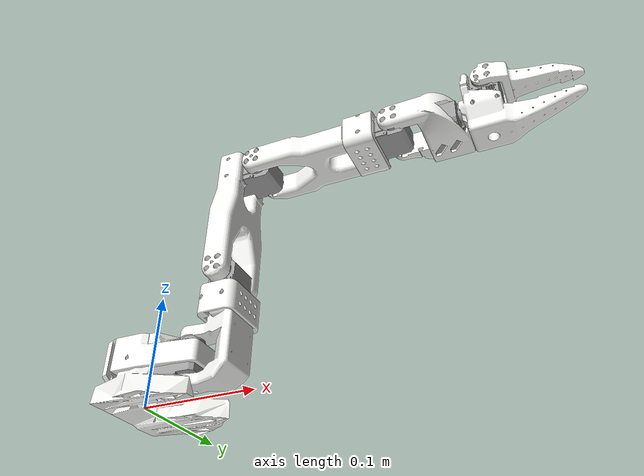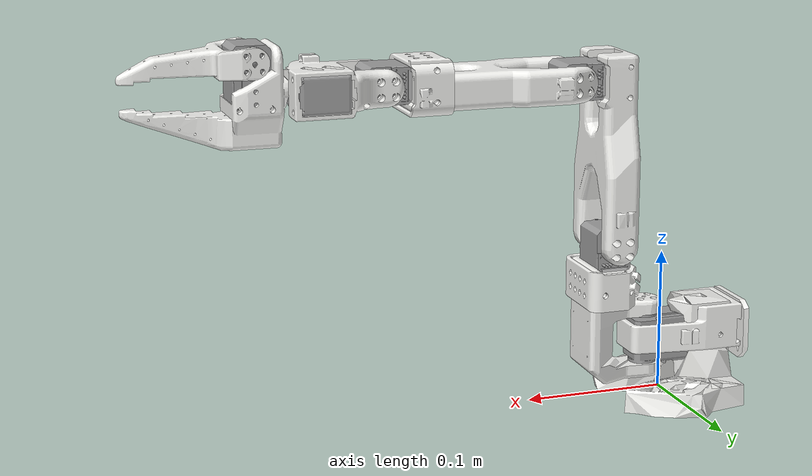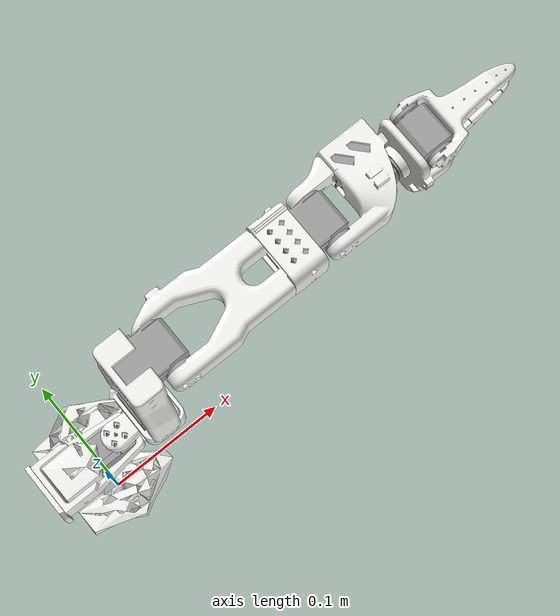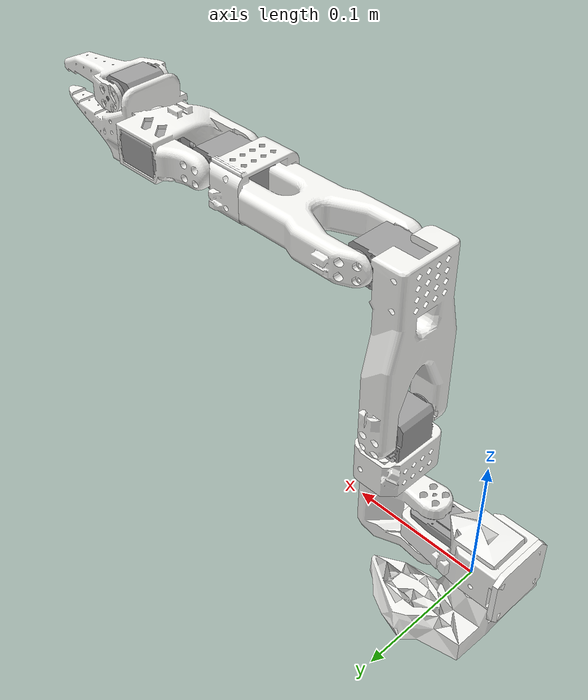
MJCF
<mujoco model="so101_new_calib">
  <compiler angle="radian" meshdir="assets/"/>

  <default>
    <default class="so101_new_calib">
      <joint armature="0.005" frictionloss="0.1"/>
      <general biastype="affine" gainprm="50" biasprm="0 -50 1"/>
      <default class="visual">
        <geom type="mesh" contype="0" conaffinity="0" group="2"/>
      </default>
      <default class="collision">
        <geom group="3"/>
      </default>
    </default>
    <default class="sts3215">
      <joint armature="0.028" damping="0.6" frictionloss="0.052"/>
      <geom contype="0" conaffinity="0"/>
      <general forcerange="-3.35 3.35" biastype="affine" gainprm="17.8" biasprm="0 -17.8"/>
    </default>
    <default class="backlash">
      <joint range="-0.00872665 0.00872665" armature="0.01" damping="0.01" limited="true"/>
    </default>
  </default>

  <asset>
    <material name="base_motor_holder_so101_v1_material" rgba="0.964706 0.964706 0.952941 1"/>
    <material name="base_so101_v2_material" rgba="0.964706 0.964706 0.952941 1"/>
    <material name="sts3215_03a_v1_material" rgba="0.627451 0.627451 0.627451 1"/>
    <material name="waveshare_mounting_plate_so101_v2_material" rgba="0.964706 0.964706 0.952941 1"/>
    <material name="motor_holder_so101_base_v1_material" rgba="0.964706 0.964706 0.952941 1"/>
    <material name="rotation_pitch_so101_v1_material" rgba="0.964706 0.964706 0.952941 1"/>
    <material name="upper_arm_so101_v1_material" rgba="0.964706 0.964706 0.952941 1"/>
    <material name="under_arm_so101_v1_material" rgba="0.964706 0.964706 0.952941 1"/>
    <material name="motor_holder_so101_wrist_v1_material" rgba="0.964706 0.964706 0.952941 1"/>
    <material name="sts3215_03a_no_horn_v1_material" rgba="0.627451 0.627451 0.627451 1"/>
    <material name="wrist_roll_pitch_so101_v2_material" rgba="0.964706 0.964706 0.952941 1"/>
    <material name="wrist_roll_follower_so101_v1_material" rgba="0.964706 0.964706 0.952941 1"/>
    <material name="moving_jaw_so101_v1_material" rgba="0.964706 0.964706 0.952941 1"/>
    <mesh name="rotation_pitch_so101_v1" file="rotation_pitch_so101_v1.stl"/>
    <mesh name="moving_jaw_so101_v1" file="moving_jaw_so101_v1.stl"/>
    <mesh name="sts3215_03a_v1" file="sts3215_03a_v1.stl"/>
    <mesh name="motor_holder_so101_wrist_v1" file="motor_holder_so101_wrist_v1.stl"/>
    <mesh name="wrist_roll_follower_so101_v1" file="wrist_roll_follower_so101_v1.stl"/>
    <mesh name="base_so101_v2" file="base_so101_v2.stl"/>
    <mesh name="under_arm_so101_v1" file="under_arm_so101_v1.stl"/>
    <mesh name="wrist_roll_pitch_so101_v2" file="wrist_roll_pitch_so101_v2.stl"/>
    <mesh name="waveshare_mounting_plate_so101_v2" file="waveshare_mounting_plate_so101_v2.stl"/>
    <mesh name="sts3215_03a_no_horn_v1" file="sts3215_03a_no_horn_v1.stl"/>
    <mesh name="motor_holder_so101_base_v1" file="motor_holder_so101_base_v1.stl"/>
    <mesh name="base_motor_holder_so101_v1" file="base_motor_holder_so101_v1.stl"/>
    <mesh name="upper_arm_so101_v1" file="upper_arm_so101_v1.stl"/>
  </asset>

  <worldbody>
    <body name="base" pos="0 0 -0.03">
      <body name="base2" childclass="so101_new_calib" quat="0.707107 0 0 0.707107">
        <inertial pos="0.020739 0.00204287 0.065966" quat="0.600491 0.799556 0.00934618 0.00578746" mass="0.147" diaginertia="0.000136127 0.000131807 0.000113233"/>
        <geom class="visual" pos="0.0206915 0.0221255 0.0300817" quat="0.707107 0.707107 0 0" material="base_motor_holder_so101_v1_material" mesh="base_motor_holder_so101_v1"/>
        <geom class="visual" pos="0.0207909 0.0221255 0.0300817" quat="0.707107 0.707107 0 0" material="base_so101_v2_material" mesh="base_so101_v2"/>
        <geom class="visual" pos="0.0207909 -0.0105745 0.0761817" quat="0.707107 0 0 -0.707107" material="sts3215_03a_v1_material" mesh="sts3215_03a_v1"/>
        <geom class="visual" pos="0.0205915 0.0467435 0.0798817" quat="0.707107 0.707107 0 0" material="waveshare_mounting_plate_so101_v2_material" mesh="waveshare_mounting_plate_so101_v2"/>
        <site name="base" quat="0 1 0 0" group="3" pos="0.020791 0.0157608 0.0324817"/>
        <body name="shoulder" pos="0.0207909 -0.0230745 0.0948817" quat="0 -0.707107 -0.707107 0">
          <inertial pos="-0.0307604 -1.66727e-05 -0.0252713" quat="0.999865 0.00149563 0.0097084 0.0132043" mass="0.100006" diaginertia="8.37836e-05 8.10388e-05 2.39552e-05"/>
          <joint name="1" class="sts3215" range="-1.91986 1.91986"/>
          <geom class="visual" pos="-0.0303992 0.000422241 -0.0417" quat="0.5 0.5 0.5 -0.5" material="sts3215_03a_v1_material" mesh="sts3215_03a_v1"/>
          <geom class="collision" pos="-0.0303992 0.000422241 -0.0417" quat="0.5 0.5 0.5 -0.5" type="mesh" material="sts3215_03a_v1_material" mesh="sts3215_03a_v1"/>
          <geom class="visual" pos="-0.0675992 -0.000177759 0.0158499" quat="0.5 0.5 -0.5 0.5" material="motor_holder_so101_base_v1_material" mesh="motor_holder_so101_base_v1"/>
          <geom class="collision" pos="-0.0675992 -0.000177759 0.0158499" quat="0.5 0.5 -0.5 0.5" type="mesh" material="motor_holder_so101_base_v1_material" mesh="motor_holder_so101_base_v1"/>
          <geom class="visual" pos="0.0122008 2.22413e-05 0.0464" quat="0.707107 -0.707107 0 0" material="rotation_pitch_so101_v1_material" mesh="rotation_pitch_so101_v1"/>
          <geom class="collision" pos="0.0122008 2.22413e-05 0.0464" quat="0.707107 -0.707107 0 0" type="mesh" material="rotation_pitch_so101_v1_material" mesh="rotation_pitch_so101_v1"/>
          <body name="upper_arm" pos="-0.0303992 -0.0182778 -0.0542" quat="0.5 -0.5 -0.5 -0.5">
            <inertial pos="-0.0898471 -0.00838224 0.0184089" quat="0.453195 0.454063 0.541891 0.542951" mass="0.103" diaginertia="0.000150873 0.000142487 3.72451e-05"/>
            <joint name="2" class="sts3215" range="-1.74533 1.74533"/>
            <geom class="visual" pos="-0.11257 -0.0155 0.0187" quat="0 -0.707107 0.707107 0" material="sts3215_03a_v1_material" mesh="sts3215_03a_v1"/>
            <geom class="collision" pos="-0.11257 -0.0155 0.0187" quat="0 -0.707107 0.707107 0" type="mesh" material="sts3215_03a_v1_material" mesh="sts3215_03a_v1"/>
            <geom class="visual" pos="-0.065085 0.012 0.0182" quat="0 1 0 0" material="upper_arm_so101_v1_material" mesh="upper_arm_so101_v1"/>
            <geom class="collision" pos="-0.065085 0.012 0.0182" quat="0 1 0 0" type="mesh" material="upper_arm_so101_v1_material" mesh="upper_arm_so101_v1"/>
            <body name="lower_arm" pos="-0.11257 -0.028 0" quat="0.707107 0 0 0.707107">
              <inertial pos="-0.0980701 0.00324376 0.0182831" quat="0.510729 0.517006 0.487966 0.483477" mass="0.104" diaginertia="0.000160262 0.000145304 2.83125e-05"/>
              <joint name="3" class="sts3215" range="-1.74533 1.5708"/>
              <geom class="visual" pos="-0.0648499 -0.032 0.0182" quat="0 1 0 0" material="under_arm_so101_v1_material" mesh="under_arm_so101_v1"/>
              <geom class="collision" pos="-0.0648499 -0.032 0.0182" quat="0 1 0 0" type="mesh" material="under_arm_so101_v1_material" mesh="under_arm_so101_v1"/>
              <geom class="visual" pos="-0.0648499 -0.032 0.018" quat="0 -1 0 0" material="motor_holder_so101_wrist_v1_material" mesh="motor_holder_so101_wrist_v1"/>
              <geom class="collision" pos="-0.0648499 -0.032 0.018" quat="0 -1 0 0" type="mesh" material="motor_holder_so101_wrist_v1_material" mesh="motor_holder_so101_wrist_v1"/>
              <geom class="visual" pos="-0.1224 0.0052 0.0187" quat="0 0 -1 0" material="sts3215_03a_v1_material" mesh="sts3215_03a_v1"/>
              <geom class="collision" pos="-0.1224 0.0052 0.0187" quat="0 0 -1 0" type="mesh" material="sts3215_03a_v1_material" mesh="sts3215_03a_v1"/>
              <body name="wrist" pos="-0.1349 0.0052 0" quat="0.707107 0 0 -0.707107">
                <inertial pos="-0.000103312 -0.0386143 0.0281156" quat="0.967143 0.254226 0.00162226 -0.000146307" mass="0.079" diaginertia="3.68265e-05 2.74474e-05 1.89434e-05"/>
                <joint name="4" class="sts3215" range="-1.65806 1.65806"/>
                <geom class="visual" pos="0 -0.0424 0.0306" quat="0.5 0.5 0.5 -0.5" material="sts3215_03a_no_horn_v1_material" mesh="sts3215_03a_no_horn_v1"/>
                <geom class="collision" pos="0 -0.0424 0.0306" quat="0.5 0.5 0.5 -0.5" type="mesh" material="sts3215_03a_no_horn_v1_material" mesh="sts3215_03a_no_horn_v1"/>
                <geom class="visual" pos="0 -0.028 0.0181" quat="0.5 -0.5 -0.5 -0.5" material="wrist_roll_pitch_so101_v2_material" mesh="wrist_roll_pitch_so101_v2"/>
                <geom class="collision" pos="0 -0.028 0.0181" quat="0.5 -0.5 -0.5 -0.5" type="mesh" material="wrist_roll_pitch_so101_v2_material" mesh="wrist_roll_pitch_so101_v2"/>
                <body name="gripper_body" pos="0 -0.0611 0.0181" quat="3.31663e-08 -3.31663e-08 -0.707107 -0.707107">
                  <inertial pos="0.000213627 0.000245138 -0.025187" quat="0.600717 0.355993 0.35863 0.61951" mass="0.087" diaginertia="4.33735e-05 3.77229e-05 2.42839e-05"/>
                  <joint name="5" class="sts3215" range="-2.79253 2.79253"/>
                  <geom class="visual" pos="0.0077 0.0001 -0.0234" quat="0.707107 -0.707107 0 0" material="sts3215_03a_v1_material" mesh="sts3215_03a_v1"/>
                  <geom class="collision" pos="0.0077 0.0001 -0.0234" quat="0.707107 -0.707107 0 0" type="mesh" material="sts3215_03a_v1_material" mesh="sts3215_03a_v1"/>
                  <geom class="visual" pos="0 -0.000218214 0.000949706" quat="0 1 0 0" material="wrist_roll_follower_so101_v1_material" mesh="wrist_roll_follower_so101_v1"/>
                  <geom class="collision" pos="0 -0.000218214 0.000949706" quat="0 1 0 0" type="mesh" material="wrist_roll_follower_so101_v1_material" mesh="wrist_roll_follower_so101_v1"/>
                  <site name="gripper" quat="0.5 -0.5 0.5 -0.5" group="3" pos="-0.0079 -0.000218121 -0.0981274"/>
                  <body name="moving_jaw_so101_v1" pos="0.0202 0.0188 -0.0234" quat="0.707107 0.707107 0 0">
                    <inertial pos="-0.00157495 -0.0300244 0.0192755" quat="0.695265 0.717965 -0.0245618 -0.0230097" mass="0.012" diaginertia="6.63582e-06 5.29092e-06 1.86523e-06"/>
                    <joint name="6" class="sts3215" range="-0.174533 1.74533"/>
                    <geom class="visual" pos="0 0 0.0189" quat="1 0 0 0" material="moving_jaw_so101_v1_material" mesh="moving_jaw_so101_v1"/>
                    <geom class="collision" pos="0 0 0.0189" quat="1 0 0 0" type="mesh" material="moving_jaw_so101_v1_material" mesh="moving_jaw_so101_v1"/>
                    <site name="attachment_site"/>
                  </body>
                </body>
              </body>
            </body>
          </body>
        </body>
      </body>
    </body>
  </worldbody>

  <actuator>
    <general name="1" class="sts3215" joint="1" ctrlrange="-1.91986 1.91986"/>
    <general name="2" class="sts3215" joint="2" ctrlrange="-1.74533 1.74533"/>
    <general name="3" class="sts3215" joint="3" ctrlrange="-1.69 1.69"/>
    <general name="4" class="sts3215" joint="4" ctrlrange="-1.65806 1.65806"/>
    <general name="5" class="sts3215" joint="5" ctrlrange="-2.74385 2.84121"/>
    <general name="6" class="sts3215" joint="6" ctrlrange="-0.17453 1.74533"/>
  </actuator>
</mujoco>
